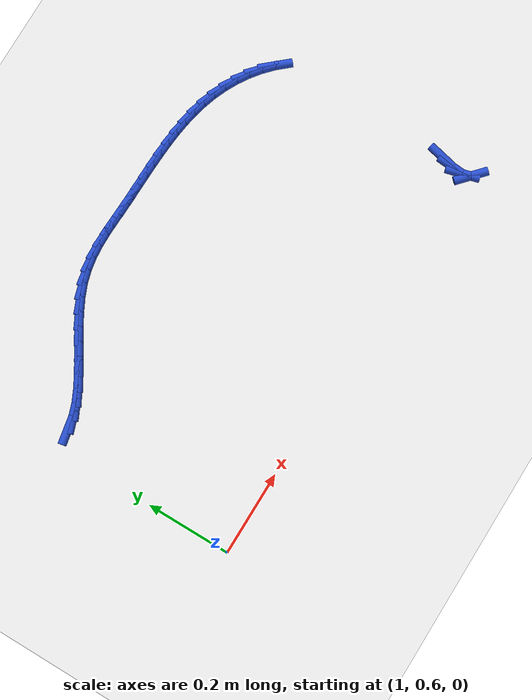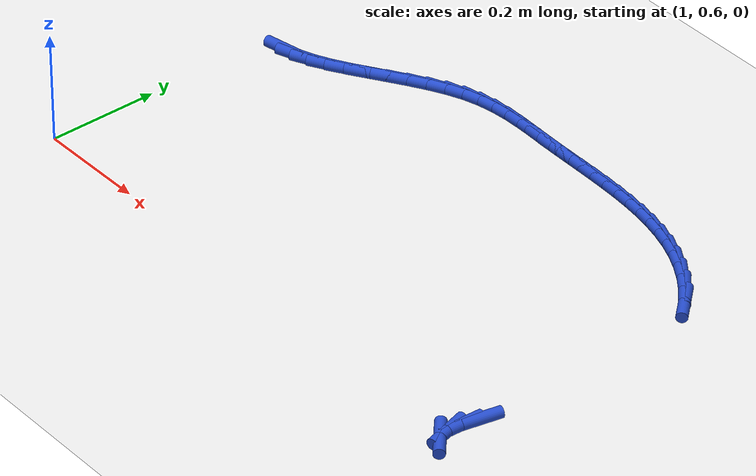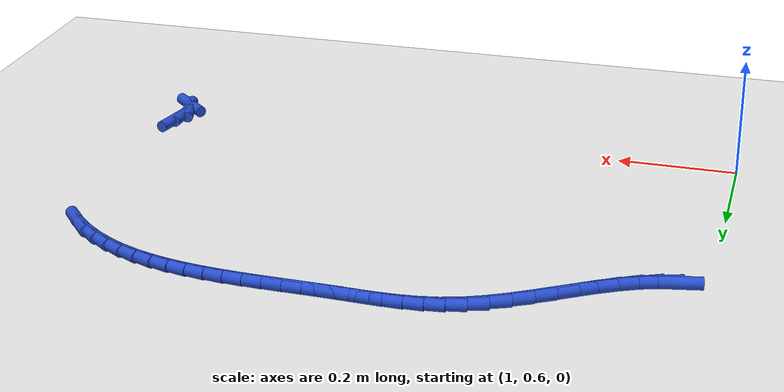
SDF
<sdf version="1.6">
 <world name="default">
  <model name="ground_plane">
   <static>1</static>
   <link name="link">
    <collision name="collision">
     <geometry><plane><normal>0 0 1</normal><size>100 100</size></plane></geometry>
     <surface><friction><ode><mu>100</mu><mu2>50</mu2></ode></friction></surface>
    </collision>
    <visual name="visual">
     <cast_shadows>0</cast_shadows>
     <geometry><plane><normal>0 0 1</normal><size>100 100</size></plane></geometry>
     <material>
      <script><uri>file://media/materials/scripts/gazebo.material</uri><name>Gazebo/WhiteGlow</name></script>
     </material>
    </visual>
   </link>
  </model>
  <model name="line">
   <link name="link_75">
    <pose>1.0508554955330858 1.0400060312721555 0.01 0 1.57 0.18915830455427926</pose>
    <collision name="collision">
     <geometry><cylinder><radius>0.01</radius><length>0.08</length></cylinder></geometry>
    </collision>
    <visual name="visual">
     <material>
      <script><name>Gazebo/Blue</name><uri>file://media/materials/scripts/gazebo.material</uri></script>
     </material>
     <geometry><cylinder><radius>0.01</radius><length>0.08</length></cylinder></geometry>
    </visual>
   </link>
   <link name="link_76">
    <pose>1.0775092322005178 1.0451088132325648 0.01 0 1.57 0.3388778866200443</pose>
    <collision name="collision">
     <geometry><cylinder><radius>0.01</radius><length>0.08</length></cylinder></geometry>
    </collision>
    <visual name="visual">
     <material>
      <script><name>Gazebo/Blue</name><uri>file://media/materials/scripts/gazebo.material</uri></script>
     </material>
     <geometry><cylinder><radius>0.01</radius><length>0.08</length></cylinder></geometry>
    </visual>
   </link>
   <link name="link_77">
    <pose>1.1048671625953566 1.0547517957889367 0.01 0 1.57 0.44232223430093615</pose>
    <collision name="collision">
     <geometry><cylinder><radius>0.01</radius><length>0.08</length></cylinder></geometry>
    </collision>
    <visual name="visual">
     <material>
      <script><name>Gazebo/Blue</name><uri>file://media/materials/scripts/gazebo.material</uri></script>
     </material>
     <geometry><cylinder><radius>0.01</radius><length>0.08</length></cylinder></geometry>
    </visual>
   </link>
   <link name="link_78">
    <pose>1.1328505574564225 1.06800530688809 0.01 0 1.57 0.5093534381050341</pose>
    <collision name="collision">
     <geometry><cylinder><radius>0.01</radius><length>0.08</length></cylinder></geometry>
    </collision>
    <visual name="visual">
     <material>
      <script><name>Gazebo/Blue</name><uri>file://media/materials/scripts/gazebo.material</uri></script>
     </material>
     <geometry><cylinder><radius>0.01</radius><length>0.08</length></cylinder></geometry>
    </visual>
   </link>
   <link name="link_79">
    <pose>1.1613806875225345 1.0839396744768424 0.01 0 1.57 0.5476567956479647</pose>
    <collision name="collision">
     <geometry><cylinder><radius>0.01</radius><length>0.08</length></cylinder></geometry>
    </collision>
    <visual name="visual">
     <material>
      <script><name>Gazebo/Blue</name><uri>file://media/materials/scripts/gazebo.material</uri></script>
     </material>
     <geometry><cylinder><radius>0.01</radius><length>0.08</length></cylinder></geometry>
    </visual>
   </link>
   <link name="link_80">
    <pose>1.1903788235325137 1.1016252265020128 0.01 0 1.57 0.5620160709826245</pose>
    <collision name="collision">
     <geometry><cylinder><radius>0.01</radius><length>0.08</length></cylinder></geometry>
    </collision>
    <visual name="visual">
     <material>
      <script><name>Gazebo/Blue</name><uri>file://media/materials/scripts/gazebo.material</uri></script>
     </material>
     <geometry><cylinder><radius>0.01</radius><length>0.08</length></cylinder></geometry>
    </visual>
   </link>
   <link name="link_81">
    <pose>1.2197662362251795 1.1201322909104197 0.01 0 1.57 0.5546592612824198</pose>
    <collision name="collision">
     <geometry><cylinder><radius>0.01</radius><length>0.08</length></cylinder></geometry>
    </collision>
    <visual name="visual">
     <material>
      <script><name>Gazebo/Blue</name><uri>file://media/materials/scripts/gazebo.material</uri></script>
     </material>
     <geometry><cylinder><radius>0.01</radius><length>0.08</length></cylinder></geometry>
    </visual>
   </link>
   <link name="link_82">
    <pose>1.2494641963393514 1.138531195648881 0.01 0 1.57 0.5256288348548437</pose>
    <collision name="collision">
     <geometry><cylinder><radius>0.01</radius><length>0.08</length></cylinder></geometry>
    </collision>
    <visual name="visual">
     <material>
      <script><name>Gazebo/Blue</name><uri>file://media/materials/scripts/gazebo.material</uri></script>
     </material>
     <geometry><cylinder><radius>0.01</radius><length>0.08</length></cylinder></geometry>
    </visual>
   </link>
   <link name="link_83">
    <pose>1.27939397461385 1.155892268664216 0.01 0 1.57 0.4729681145783479</pose>
    <collision name="collision">
     <geometry><cylinder><radius>0.01</radius><length>0.08</length></cylinder></geometry>
    </collision>
    <visual name="visual">
     <material>
      <script><name>Gazebo/Blue</name><uri>file://media/materials/scripts/gazebo.material</uri></script>
     </material>
     <geometry><cylinder><radius>0.01</radius><length>0.08</length></cylinder></geometry>
    </visual>
   </link>
   <link name="link_84">
    <pose>1.3094768417874951 1.171285837903242 0.01 0 1.57 0.39283665861570255</pose>
    <collision name="collision">
     <geometry><cylinder><radius>0.01</radius><length>0.08</length></cylinder></geometry>
    </collision>
    <visual name="visual">
     <material>
      <script><name>Gazebo/Blue</name><uri>file://media/materials/scripts/gazebo.material</uri></script>
     </material>
     <geometry><cylinder><radius>0.01</radius><length>0.08</length></cylinder></geometry>
    </visual>
   </link>
   <link name="link_85">
    <pose>1.3396340685991062 1.183782231312778 0.01 0 1.57 0.2834925896244082</pose>
    <collision name="collision">
     <geometry><cylinder><radius>0.01</radius><length>0.08</length></cylinder></geometry>
    </collision>
    <visual name="visual">
     <material>
      <script><name>Gazebo/Blue</name><uri>file://media/materials/scripts/gazebo.material</uri></script>
     </material>
     <geometry><cylinder><radius>0.01</radius><length>0.08</length></cylinder></geometry>
    </visual>
   </link>
   <link name="link_86">
    <pose>1.3697947927417582 1.192569242380448 0.01 0 1.57 0.17357214209448288</pose>
    <collision name="collision">
     <geometry><cylinder><radius>0.01</radius><length>0.08</length></cylinder></geometry>
    </collision>
    <visual name="visual">
     <material>
      <script><name>Gazebo/Blue</name><uri>file://media/materials/scripts/gazebo.material</uri></script>
     </material>
     <geometry><cylinder><radius>0.01</radius><length>0.08</length></cylinder></geometry>
    </visual>
   </link>
   <link name="link_87">
    <pose>1.399956668421207 1.197857719890283 0.01 0 1.57 0.08351976543381652</pose>
    <collision name="collision">
     <geometry><cylinder><radius>0.01</radius><length>0.08</length></cylinder></geometry>
    </collision>
    <visual name="visual">
     <material>
      <script><name>Gazebo/Blue</name><uri>file://media/materials/scripts/gazebo.material</uri></script>
     </material>
     <geometry><cylinder><radius>0.01</radius><length>0.08</length></cylinder></geometry>
    </visual>
   </link>
   <link name="link_88">
    <pose>1.4301526475884885 1.2003855614185577 0.01 0 1.57 0.016832890428266023</pose>
    <collision name="collision">
     <geometry><cylinder><radius>0.01</radius><length>0.08</length></cylinder></geometry>
    </collision>
    <visual name="visual">
     <material>
      <script><name>Gazebo/Blue</name><uri>file://media/materials/scripts/gazebo.material</uri></script>
     </material>
     <geometry><cylinder><radius>0.01</radius><length>0.08</length></cylinder></geometry>
    </visual>
   </link>
   <link name="link_89">
    <pose>1.4604159744799263 1.2008950288035742 0.01 0 1.57 -0.02524318671307621</pose>
    <collision name="collision">
     <geometry><cylinder><radius>0.01</radius><length>0.08</length></cylinder></geometry>
    </collision>
    <visual name="visual">
     <material>
      <script><name>Gazebo/Blue</name><uri>file://media/materials/scripts/gazebo.material</uri></script>
     </material>
     <geometry><cylinder><radius>0.01</radius><length>0.08</length></cylinder></geometry>
    </visual>
   </link>
   <link name="link_90">
    <pose>1.4907798933318472 1.200128383883634 0.01 0 1.57 -0.042616513362511765</pose>
    <collision name="collision">
     <geometry><cylinder><radius>0.01</radius><length>0.08</length></cylinder></geometry>
    </collision>
    <visual name="visual">
     <material>
      <script><name>Gazebo/Blue</name><uri>file://media/materials/scripts/gazebo.material</uri></script>
     </material>
     <geometry><cylinder><radius>0.01</radius><length>0.08</length></cylinder></geometry>
    </visual>
   </link>
   <link name="link_91">
    <pose>1.521277648380575 1.1988278884970385 0.01 0 1.57 -0.0365988944331113</pose>
    <collision name="collision">
     <geometry><cylinder><radius>0.01</radius><length>0.08</length></cylinder></geometry>
    </collision>
    <visual name="visual">
     <material>
      <script><name>Gazebo/Blue</name><uri>file://media/materials/scripts/gazebo.material</uri></script>
     </material>
     <geometry><cylinder><radius>0.01</radius><length>0.08</length></cylinder></geometry>
    </visual>
   </link>
   <link name="link_92">
    <pose>1.5519392752240748 1.1977052055381674 0.01 0 1.57 -0.02462652032616009</pose>
    <collision name="collision">
     <geometry><cylinder><radius>0.01</radius><length>0.08</length></cylinder></geometry>
    </collision>
    <visual name="visual">
     <material>
      <script><name>Gazebo/Blue</name><uri>file://media/materials/scripts/gazebo.material</uri></script>
     </material>
     <geometry><cylinder><radius>0.01</radius><length>0.08</length></cylinder></geometry>
    </visual>
   </link>
   <link name="link_93">
    <pose>1.5827397098623783 1.1969465446350693 0.01 0 1.57 -0.02107230313265916</pose>
    <collision name="collision">
     <geometry><cylinder><radius>0.01</radius><length>0.08</length></cylinder></geometry>
    </collision>
    <visual name="visual">
     <material>
      <script><name>Gazebo/Blue</name><uri>file://media/materials/scripts/gazebo.material</uri></script>
     </material>
     <geometry><cylinder><radius>0.01</radius><length>0.08</length></cylinder></geometry>
    </visual>
   </link>
   <link name="link_94">
    <pose>1.6136075267921384 1.1962959923459937 0.01 0 1.57 -0.026308666256453908</pose>
    <collision name="collision">
     <geometry><cylinder><radius>0.01</radius><length>0.08</length></cylinder></geometry>
    </collision>
    <visual name="visual">
     <material>
      <script><name>Gazebo/Blue</name><uri>file://media/materials/scripts/gazebo.material</uri></script>
     </material>
     <geometry><cylinder><radius>0.01</radius><length>0.08</length></cylinder></geometry>
    </visual>
   </link>
   <link name="link_95">
    <pose>1.6444698558411426 1.1954838582507332 0.01 0 1.57 -0.04036941150487386</pose>
    <collision name="collision">
     <geometry><cylinder><radius>0.01</radius><length>0.08</length></cylinder></geometry>
    </collision>
    <visual name="visual">
     <material>
      <script><name>Gazebo/Blue</name><uri>file://media/materials/scripts/gazebo.material</uri></script>
     </material>
     <geometry><cylinder><radius>0.01</radius><length>0.08</length></cylinder></geometry>
    </visual>
   </link>
   <link name="link_96">
    <pose>1.6752538268371795 1.194240451929082 0.01 0 1.57 -0.06338851403265576</pose>
    <collision name="collision">
     <geometry><cylinder><radius>0.01</radius><length>0.08</length></cylinder></geometry>
    </collision>
    <visual name="visual">
     <material>
      <script><name>Gazebo/Blue</name><uri>file://media/materials/scripts/gazebo.material</uri></script>
     </material>
     <geometry><cylinder><radius>0.01</radius><length>0.08</length></cylinder></geometry>
    </visual>
   </link>
   <link name="link_97">
    <pose>1.7058865696080363 1.1922960829608333 0.01 0 1.57 -0.09556959396827602</pose>
    <collision name="collision">
     <geometry><cylinder><radius>0.01</radius><length>0.08</length></cylinder></geometry>
    </collision>
    <visual name="visual">
     <material>
      <script><name>Gazebo/Blue</name><uri>file://media/materials/scripts/gazebo.material</uri></script>
     </material>
     <geometry><cylinder><radius>0.01</radius><length>0.08</length></cylinder></geometry>
    </visual>
   </link>
   <link name="link_98">
    <pose>1.7362952139815018 1.1893810609257809 0.01 0 1.57 -0.13713236103651322</pose>
    <collision name="collision">
     <geometry><cylinder><radius>0.01</radius><length>0.08</length></cylinder></geometry>
    </collision>
    <visual name="visual">
     <material>
      <script><name>Gazebo/Blue</name><uri>file://media/materials/scripts/gazebo.material</uri></script>
     </material>
     <geometry><cylinder><radius>0.01</radius><length>0.08</length></cylinder></geometry>
    </visual>
   </link>
   <link name="link_99">
    <pose>1.7664068897853638 1.1852256954037181 0.01 0 1.57 -0.18823083687426526</pose>
    <collision name="collision">
     <geometry><cylinder><radius>0.01</radius><length>0.08</length></cylinder></geometry>
    </collision>
    <visual name="visual">
     <material>
      <script><name>Gazebo/Blue</name><uri>file://media/materials/scripts/gazebo.material</uri></script>
     </material>
     <geometry><cylinder><radius>0.01</radius><length>0.08</length></cylinder></geometry>
    </visual>
   </link>
   <link name="link_100">
    <pose>1.7961487268474103 1.1795602959744387 0.01 0 1.57 -0.24884065098022967</pose>
    <collision name="collision">
     <geometry><cylinder><radius>0.01</radius><length>0.08</length></cylinder></geometry>
    </collision>
    <visual name="visual">
     <material>
      <script><name>Gazebo/Blue</name><uri>file://media/materials/scripts/gazebo.material</uri></script>
     </material>
     <geometry><cylinder><radius>0.01</radius><length>0.08</length></cylinder></geometry>
    </visual>
   </link>
   <link name="link_101">
    <pose>1.825447854995429 1.1721151722177359 0.01 0 1.57 -0.3186212102614816</pose>
    <collision name="collision">
     <geometry><cylinder><radius>0.01</radius><length>0.08</length></cylinder></geometry>
    </collision>
    <visual name="visual">
     <material>
      <script><name>Gazebo/Blue</name><uri>file://media/materials/scripts/gazebo.material</uri></script>
     </material>
     <geometry><cylinder><radius>0.01</radius><length>0.08</length></cylinder></geometry>
    </visual>
   </link>
   <link name="link_102">
    <pose>1.8542314040572092 1.162620633713404 0.01 0 1.57 -0.39677350936154043</pose>
    <collision name="collision">
     <geometry><cylinder><radius>0.01</radius><length>0.08</length></cylinder></geometry>
    </collision>
    <visual name="visual">
     <material>
      <script><name>Gazebo/Blue</name><uri>file://media/materials/scripts/gazebo.material</uri></script>
     </material>
     <geometry><cylinder><radius>0.01</radius><length>0.08</length></cylinder></geometry>
    </visual>
   </link>
   <link name="link_103">
    <pose>1.8824264530154944 1.1508070450145056 0.01 0 1.57 -0.4808346558489253</pose>
    <collision name="collision">
     <geometry><cylinder><radius>0.01</radius><length>0.08</length></cylinder></geometry>
    </collision>
    <visual name="visual">
     <material>
      <script><name>Gazebo/Blue</name><uri>file://media/materials/scripts/gazebo.material</uri></script>
     </material>
     <geometry><cylinder><radius>0.01</radius><length>0.08</length></cylinder></geometry>
    </visual>
   </link>
   <link name="link_104">
    <pose>1.9098908311509077 1.136479642918895 0.01 0 1.57 -0.5673307461728903</pose>
    <collision name="collision">
     <geometry><cylinder><radius>0.01</radius><length>0.08</length></cylinder></geometry>
    </collision>
    <visual name="visual">
     <material>
      <script><name>Gazebo/Blue</name><uri>file://media/materials/scripts/gazebo.material</uri></script>
     </material>
     <geometry><cylinder><radius>0.01</radius><length>0.08</length></cylinder></geometry>
    </visual>
   </link>
   <link name="link_105">
    <pose>1.9362760310113474 1.1196667539112963 0.01 0 1.57 -0.6572072226546508</pose>
    <collision name="collision">
     <geometry><cylinder><radius>0.01</radius><length>0.08</length></cylinder></geometry>
    </collision>
    <visual name="visual">
     <material>
      <script><name>Gazebo/Blue</name><uri>file://media/materials/scripts/gazebo.material</uri></script>
     </material>
     <geometry><cylinder><radius>0.01</radius><length>0.08</length></cylinder></geometry>
    </visual>
   </link>
   <link name="link_106">
    <pose>1.9611952863641247 1.100438069575455 0.01 0 1.57 -0.7519941059592291</pose>
    <collision name="collision">
     <geometry><cylinder><radius>0.01</radius><length>0.08</length></cylinder></geometry>
    </collision>
    <visual name="visual">
     <material>
      <script><name>Gazebo/Blue</name><uri>file://media/materials/scripts/gazebo.material</uri></script>
     </material>
     <geometry><cylinder><radius>0.01</radius><length>0.08</length></cylinder></geometry>
    </visual>
   </link>
   <link name="link_107">
    <pose>1.984261830976551 1.0788632814951162 0.01 0 1.57 -0.8529819581716235</pose>
    <collision name="collision">
     <geometry><cylinder><radius>0.01</radius><length>0.08</length></cylinder></geometry>
    </collision>
    <visual name="visual">
     <material>
      <script><name>Gazebo/Blue</name><uri>file://media/materials/scripts/gazebo.material</uri></script>
     </material>
     <geometry><cylinder><radius>0.01</radius><length>0.08</length></cylinder></geometry>
    </visual>
   </link>
   <link name="link_120">
    <pose>1.9992103385830184 0.6455096874584627 0.01 0 1.57 1.3473890696483324</pose>
    <collision name="collision">
     <geometry><cylinder><radius>0.01</radius><length>0.08</length></cylinder></geometry>
    </collision>
    <visual name="visual">
     <material>
      <script><name>Gazebo/Blue</name><uri>file://media/materials/scripts/gazebo.material</uri></script>
     </material>
     <geometry><cylinder><radius>0.01</radius><length>0.08</length></cylinder></geometry>
    </visual>
   </link>
   <link name="link_121">
    <pose>1.9925633144549715 0.6162533938715439 0.01 0 1.57 1.505182410893332</pose>
    <collision name="collision">
     <geometry><cylinder><radius>0.01</radius><length>0.08</length></cylinder></geometry>
    </collision>
    <visual name="visual">
     <material>
      <script><name>Gazebo/Blue</name><uri>file://media/materials/scripts/gazebo.material</uri></script>
     </material>
     <geometry><cylinder><radius>0.01</radius><length>0.08</length></cylinder></geometry>
    </visual>
   </link>
   <link name="link_122">
    <pose>1.9909596995974002 0.5918483132102772 0.01 0 1.57 -1.3111676998726598</pose>
    <collision name="collision">
     <geometry><cylinder><radius>0.01</radius><length>0.08</length></cylinder></geometry>
    </collision>
    <visual name="visual">
     <material>
      <script><name>Gazebo/Blue</name><uri>file://media/materials/scripts/gazebo.material</uri></script>
     </material>
     <geometry><cylinder><radius>0.01</radius><length>0.08</length></cylinder></geometry>
    </visual>
   </link>
   <link name="link_123">
    <pose>1.995893162783447 0.573275200291531 0.01 0 1.57 -0.7367474388086854</pose>
    <collision name="collision">
     <geometry><cylinder><radius>0.01</radius><length>0.08</length></cylinder></geometry>
    </collision>
    <visual name="visual">
     <material>
      <script><name>Gazebo/Blue</name><uri>file://media/materials/scripts/gazebo.material</uri></script>
     </material>
     <geometry><cylinder><radius>0.01</radius><length>0.08</length></cylinder></geometry>
    </visual>
   </link>
  </model>
 </world>
</sdf>
